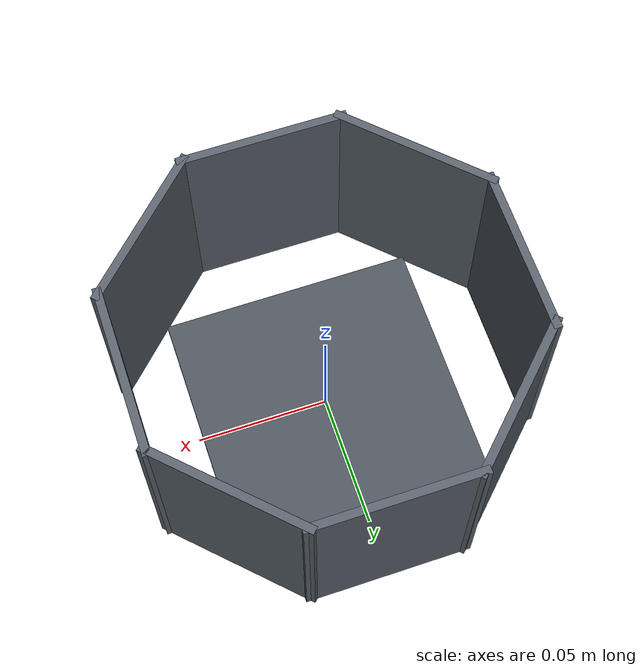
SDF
<?xml version="1.0" ?>
<sdf version="1.7">
  <model name="waste_bin">
    <static>true</static>
    <link name="link">

      <collision name="col_floor">
        <pose>0 0 0.00100 0 0 0</pose>
        <geometry><box><size>0.09702 0.09702 0.00200</size></box></geometry>
        <surface><friction><ode><mu>0.9</mu><mu2>0.9</mu2></ode></friction></surface>
      </collision>
      <visual name="vis_floor">
        <pose>0 0 0.00100 0 0 0</pose>
        <geometry><box><size>0.09702 0.09702 0.00200</size></box></geometry>
        <material><ambient>0.30 0.33 0.36 1</ambient><diffuse>0.30 0.33 0.36 1</diffuse></material>
      </visual>

      <collision name="col_wall_0">
        <pose>0.07000 0.00000 0.04000 0 0 0.00000</pose>
        <geometry><box><size>0.00300 0.06263 0.08000</size></box></geometry>
        <surface><friction><ode><mu>0.9</mu><mu2>0.9</mu2></ode></friction></surface>
      </collision>
      <visual name="vis_wall_0">
        <pose>0.07000 0.00000 0.04000 0 0 0.00000</pose>
        <geometry><box><size>0.00300 0.06263 0.08000</size></box></geometry>
        <material><ambient>0.35 0.38 0.42 1</ambient><diffuse>0.35 0.38 0.42 1</diffuse></material>
      </visual>
      <collision name="col_wall_1">
        <pose>0.04950 0.04950 0.04000 0 0 0.78540</pose>
        <geometry><box><size>0.00300 0.06263 0.08000</size></box></geometry>
        <surface><friction><ode><mu>0.9</mu><mu2>0.9</mu2></ode></friction></surface>
      </collision>
      <visual name="vis_wall_1">
        <pose>0.04950 0.04950 0.04000 0 0 0.78540</pose>
        <geometry><box><size>0.00300 0.06263 0.08000</size></box></geometry>
        <material><ambient>0.35 0.38 0.42 1</ambient><diffuse>0.35 0.38 0.42 1</diffuse></material>
      </visual>
      <collision name="col_wall_2">
        <pose>0.00000 0.07000 0.04000 0 0 1.57080</pose>
        <geometry><box><size>0.00300 0.06263 0.08000</size></box></geometry>
        <surface><friction><ode><mu>0.9</mu><mu2>0.9</mu2></ode></friction></surface>
      </collision>
      <visual name="vis_wall_2">
        <pose>0.00000 0.07000 0.04000 0 0 1.57080</pose>
        <geometry><box><size>0.00300 0.06263 0.08000</size></box></geometry>
        <material><ambient>0.35 0.38 0.42 1</ambient><diffuse>0.35 0.38 0.42 1</diffuse></material>
      </visual>
      <collision name="col_wall_3">
        <pose>-0.04950 0.04950 0.04000 0 0 2.35619</pose>
        <geometry><box><size>0.00300 0.06263 0.08000</size></box></geometry>
        <surface><friction><ode><mu>0.9</mu><mu2>0.9</mu2></ode></friction></surface>
      </collision>
      <visual name="vis_wall_3">
        <pose>-0.04950 0.04950 0.04000 0 0 2.35619</pose>
        <geometry><box><size>0.00300 0.06263 0.08000</size></box></geometry>
        <material><ambient>0.35 0.38 0.42 1</ambient><diffuse>0.35 0.38 0.42 1</diffuse></material>
      </visual>
      <collision name="col_wall_4">
        <pose>-0.07000 0.00000 0.04000 0 0 3.14159</pose>
        <geometry><box><size>0.00300 0.06263 0.08000</size></box></geometry>
        <surface><friction><ode><mu>0.9</mu><mu2>0.9</mu2></ode></friction></surface>
      </collision>
      <visual name="vis_wall_4">
        <pose>-0.07000 0.00000 0.04000 0 0 3.14159</pose>
        <geometry><box><size>0.00300 0.06263 0.08000</size></box></geometry>
        <material><ambient>0.35 0.38 0.42 1</ambient><diffuse>0.35 0.38 0.42 1</diffuse></material>
      </visual>
      <collision name="col_wall_5">
        <pose>-0.04950 -0.04950 0.04000 0 0 3.92699</pose>
        <geometry><box><size>0.00300 0.06263 0.08000</size></box></geometry>
        <surface><friction><ode><mu>0.9</mu><mu2>0.9</mu2></ode></friction></surface>
      </collision>
      <visual name="vis_wall_5">
        <pose>-0.04950 -0.04950 0.04000 0 0 3.92699</pose>
        <geometry><box><size>0.00300 0.06263 0.08000</size></box></geometry>
        <material><ambient>0.35 0.38 0.42 1</ambient><diffuse>0.35 0.38 0.42 1</diffuse></material>
      </visual>
      <collision name="col_wall_6">
        <pose>-0.00000 -0.07000 0.04000 0 0 4.71239</pose>
        <geometry><box><size>0.00300 0.06263 0.08000</size></box></geometry>
        <surface><friction><ode><mu>0.9</mu><mu2>0.9</mu2></ode></friction></surface>
      </collision>
      <visual name="vis_wall_6">
        <pose>-0.00000 -0.07000 0.04000 0 0 4.71239</pose>
        <geometry><box><size>0.00300 0.06263 0.08000</size></box></geometry>
        <material><ambient>0.35 0.38 0.42 1</ambient><diffuse>0.35 0.38 0.42 1</diffuse></material>
      </visual>
      <collision name="col_wall_7">
        <pose>0.04950 -0.04950 0.04000 0 0 5.49779</pose>
        <geometry><box><size>0.00300 0.06263 0.08000</size></box></geometry>
        <surface><friction><ode><mu>0.9</mu><mu2>0.9</mu2></ode></friction></surface>
      </collision>
      <visual name="vis_wall_7">
        <pose>0.04950 -0.04950 0.04000 0 0 5.49779</pose>
        <geometry><box><size>0.00300 0.06263 0.08000</size></box></geometry>
        <material><ambient>0.35 0.38 0.42 1</ambient><diffuse>0.35 0.38 0.42 1</diffuse></material>
      </visual>
    </link>
  </model>
</sdf>
